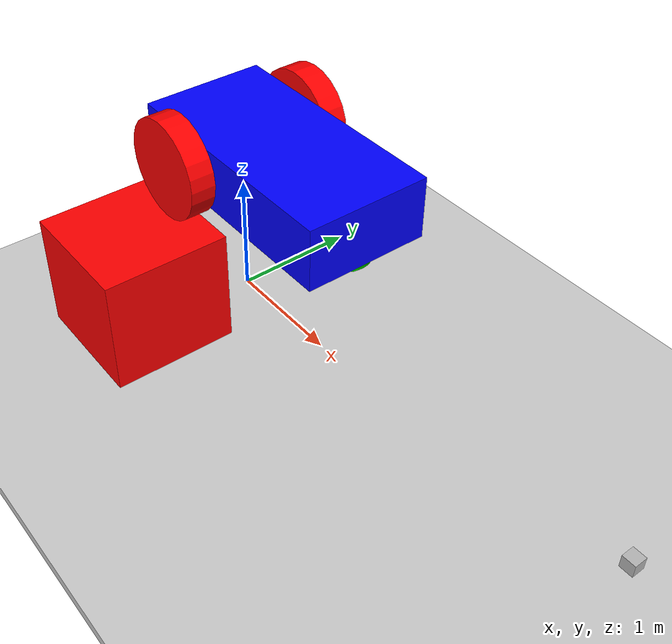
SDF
<sdf version="1.6">
 <world name="rover_experiment">
  <physics name="1ms" type="ignored">
   <max_step_size>0.001</max_step_size>
   <real_time_factor>1.0</real_time_factor>
  </physics>
  <plugin filename="ignition-gazebo-physics-system" name="gz::sim::systems::Physics"/>
  <plugin filename="ignition-gazebo-sensors-system" name="gz::sim::systems::Sensors">
   <render_engine>ogre2</render_engine>
  </plugin>
  <plugin filename="ignition-gazebo-imu-system" name="ignition::gazebo::systems::Imu"/>
  <plugin filename="ignition-gazebo-scene-broadcaster-system" name="gz::sim::systems::SceneBroadcaster"/>
  <light type="directional" name="sun">
   <pose>0 0 10 0 0 0</pose>
   <diffuse>0.8 0.8 0.8 1</diffuse>
   <specular>0.2 0.2 0.2 1</specular>
   <attenuation>
    <range>1000</range>
    <constant>0.9</constant>
    <linear>0.01</linear>
    <quadratic>0.001</quadratic>
   </attenuation>
   <direction>-0.5 0.1 -0.9</direction>
  </light>
  <model name="ground_plane">
   <static>true</static>
   <link name="link">
    <collision name="collision"><geometry><box><size>20 20 0.1</size></box></geometry></collision>
    <visual name="visual">
     <geometry><box><size>20 20 0.1</size></box></geometry>
     <material>
      <ambient>0.8 0.8 0.8 1</ambient>
      <diffuse>0.8 0.8 0.8 1</diffuse>
      <specular>0.8 0.8 0.8 1</specular>
     </material>
    </visual>
   </link>
  </model>
  <model name="box">
   <pose>0 -1 0.5 0 0 0</pose>
   <link name="box_link">
    <inertial>
     <inertia><ixx>1</ixx><ixy>0</ixy><ixz>0</ixz><iyy>1</iyy><iyz>0</iyz><izz>1</izz></inertia>
     <mass>1.0</mass>
    </inertial>
    <collision name="box_collision"><geometry><box><size>1 1 1</size></box></geometry></collision>
    <visual name="box_visual">
     <geometry><box><size>1 1 1</size></box></geometry>
     <material><ambient>1 0 0 1</ambient><diffuse>1 0 0 1</diffuse><specular>1 0 0 1</specular></material>
    </visual>
   </link>
  </model>
  <model name="vehicle_blue" canonical_link="chassis">
   <pose relative_to="world">0 0 1 0 0 0</pose>
   <frame name="lidar_frame" attached_to="chassis"><pose>0.8 0 0.5 0 0 0</pose></frame>
   <link name="chassis">
    <pose relative_to="__model__">0.5 0 0.4 0 0 0</pose>
    <inertial>
     <mass>1.14395</mass>
     <inertia>
      <ixx>0.126164</ixx>
      <ixy>0</ixy>
      <ixz>0</ixz>
      <iyy>0.416519</iyy>
      <iyz>0</iyz>
      <izz>0.481014</izz>
     </inertia>
    </inertial>
    <visual name="visual">
     <geometry><box><size>2.0 1.0 0.5</size></box></geometry>
     <material>
      <ambient>0.0 0.0 1.0 1</ambient>
      <diffuse>0.0 0.0 1.0 1</diffuse>
      <specular>0.0 0.0 1.0 1</specular>
     </material>
    </visual>
    <collision name="collision"><geometry><box><size>2.0 1.0 0.5</size></box></geometry></collision>
    <sensor name="imu_sensor" type="imu">
     <always_on>1</always_on>
     <update_rate>1</update_rate>
     <visualize>true</visualize>
     <topic>imu</topic>
    </sensor>
    <sensor name="gpu_lidar" type="gpu_lidar">
     <pose relative_to="lidar_frame">0 0 0 0 0 0</pose>
     <topic>lidar</topic>
     <update_rate>10</update_rate>
     <ray>
      <scan>
       <horizontal>
        <samples>640</samples>
        <resolution>1</resolution>
        <min_angle>-0.785398</min_angle>
        <max_angle>0.785398</max_angle>
       </horizontal>
       <vertical>
        <samples>480</samples>
        <resolution>1</resolution>
        <min_angle>-0.549778</min_angle>
        <max_angle>0.549778</max_angle>
       </vertical>
      </scan>
      <range><min>0.08</min><max>10.0</max><resolution>0.01</resolution></range>
     </ray>
     <alwaysOn>1</alwaysOn>
     <visualize>true</visualize>
    </sensor>
   </link>
   <link name="left_wheel">
    <pose relative_to="chassis">-0.5 0.6 0 -1.5707 0 0</pose>
    <inertial>
     <mass>2</mass>
     <inertia><ixx>0.145833</ixx><ixy>0</ixy><ixz>0</ixz><iyy>0.145833</iyy><iyz>0</iyz><izz>0.125</izz></inertia>
    </inertial>
    <visual name="visual">
     <geometry><cylinder><radius>0.4</radius><length>0.2</length></cylinder></geometry>
     <material>
      <ambient>1.0 0.0 0.0 1</ambient>
      <diffuse>1.0 0.0 0.0 1</diffuse>
      <specular>1.0 0.0 0.0 1</specular>
     </material>
    </visual>
    <collision name="collision">
     <geometry><cylinder><radius>0.4</radius><length>0.2</length></cylinder></geometry>
    </collision>
   </link>
   <link name="right_wheel">
    <pose relative_to="chassis">-0.5 -0.6 0 -1.5707 0 0</pose>
    <inertial>
     <mass>1</mass>
     <inertia><ixx>0.145833</ixx><ixy>0</ixy><ixz>0</ixz><iyy>0.145833</iyy><iyz>0</iyz><izz>0.125</izz></inertia>
    </inertial>
    <visual name="visual">
     <geometry><cylinder><radius>0.4</radius><length>0.2</length></cylinder></geometry>
     <material>
      <ambient>1.0 0.0 0.0 1</ambient>
      <diffuse>1.0 0.0 0.0 1</diffuse>
      <specular>1.0 0.0 0.0 1</specular>
     </material>
    </visual>
    <collision name="collision">
     <geometry><cylinder><radius>0.4</radius><length>0.2</length></cylinder></geometry>
    </collision>
   </link>
   <frame name="caster_frame" attached_to="chassis"><pose>0.8 0 -0.2 0 0 0</pose></frame>
   <link name="caster">
    <pose relative_to="caster_frame"/>
    <inertial>
     <mass>1</mass>
     <inertia><ixx>0.1</ixx><ixy>0</ixy><ixz>0</ixz><iyy>0.1</iyy><iyz>0</iyz><izz>0.1</izz></inertia>
    </inertial>
    <visual name="visual">
     <geometry><sphere><radius>0.2</radius></sphere></geometry>
     <material>
      <ambient>0.0 1 0.0 1</ambient>
      <diffuse>0.0 1 0.0 1</diffuse>
      <specular>0.0 1 0.0 1</specular>
     </material>
    </visual>
    <collision name="collision"><geometry><sphere><radius>0.2</radius></sphere></geometry></collision>
   </link>
   <joint name="left_wheel_joint" type="revolute">
    <pose relative_to="left_wheel"/>
    <parent>chassis</parent>
    <child>left_wheel</child>
    <axis>
     <xyz expressed_in="__model__">0 1 0</xyz>
     <limit><lower>-1.79769e+308</lower><upper>1.79769e+308</upper></limit>
    </axis>
   </joint>
   <joint name="right_wheel_joint" type="revolute">
    <pose relative_to="right_wheel"/>
    <parent>chassis</parent>
    <child>right_wheel</child>
    <axis>
     <xyz expressed_in="__model__">0 1 0</xyz>
     <limit><lower>-1.79769e+308</lower><upper>1.79769e+308</upper></limit>
    </axis>
   </joint>
   <joint name="caster_wheel" type="ball"><parent>chassis</parent><child>caster</child></joint>
   <plugin filename="ignition-gazebo-diff-drive-system" name="ignition::gazebo::systems::DiffDrive">
    <left_joint>left_wheel_joint</left_joint>
    <right_joint>right_wheel_joint</right_joint>
    <wheel_separation>1.2</wheel_separation>
    <wheel_radius>0.4</wheel_radius>
    <odom_publish_frequency>1</odom_publish_frequency>
    <topic>cmd_vel</topic>
   </plugin>
  </model>
  <model name="depth_camera">
   <pose>4 0 0.5 0 0.0 3.14</pose>
   <link name="link">
    <pose>0.05 0.05 0.05 0 0 0</pose>
    <inertial>
     <mass>0.1</mass>
     <inertia><ixx>0.000166667</ixx><iyy>0.000166667</iyy><izz>0.000166667</izz></inertia>
    </inertial>
    <collision name="collision"><geometry><box><size>0.1 0.1 0.1</size></box></geometry></collision>
    <visual name="visual"><geometry><box><size>0.1 0.1 0.1</size></box></geometry></visual>
    <sensor name="depth_camera1" type="depth_camera">
     <update_rate>10</update_rate>
     <topic>depth_camera</topic>
     <camera>
      <horizontal_fov>1.5708</horizontal_fov>
      <image><width>640</width><height>480</height><format>R_FLOAT32</format></image>
      <clip><near>0.1</near><far>10.0</far></clip>
     </camera>
    </sensor>
   </link>
   <static>true</static>
  </model>
 </world>
</sdf>
